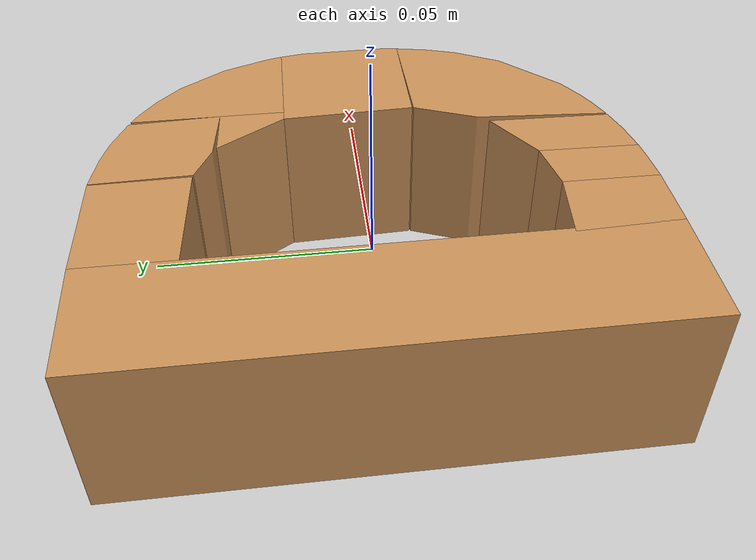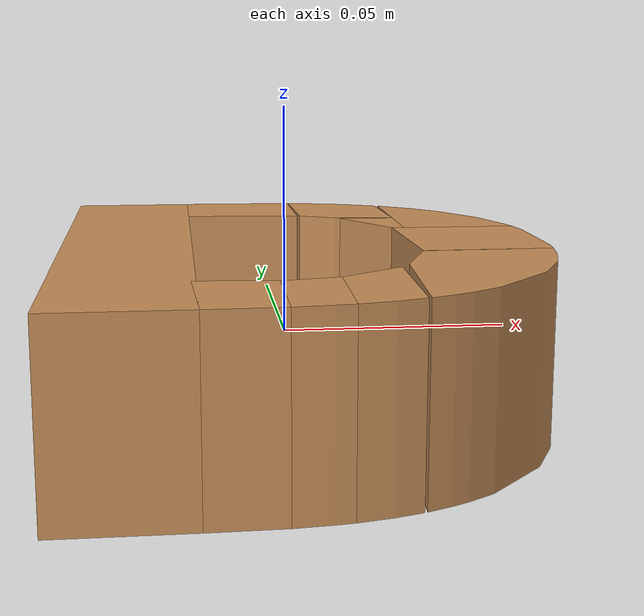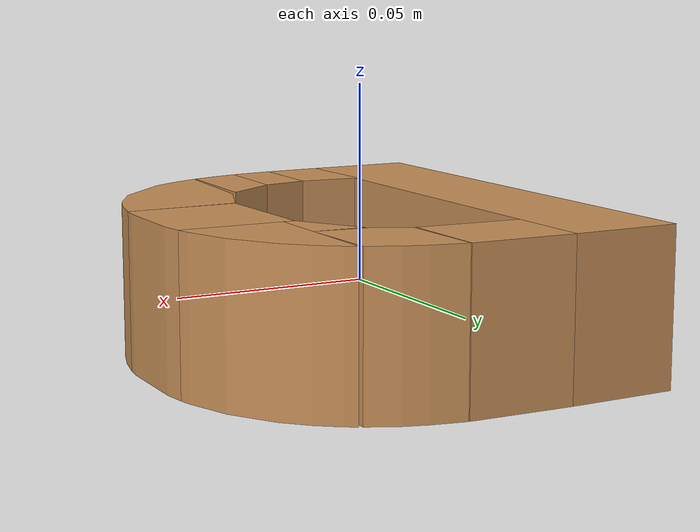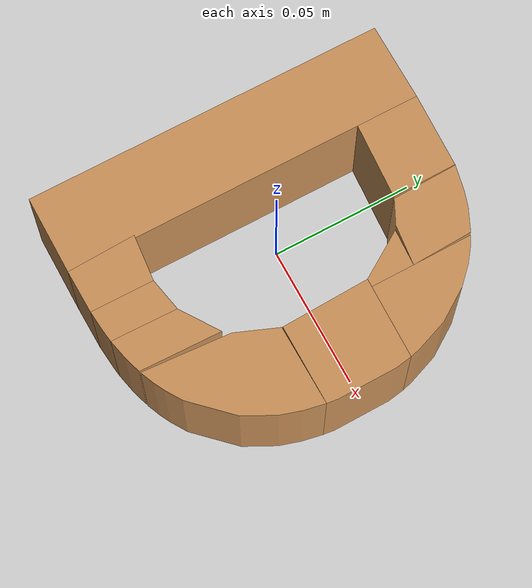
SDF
<?xml version='1.0' encoding='UTF-8'?>
<!-- This SDF was autogenerated by obj_to_drake_sdf.py -->
<sdf version="1.7">
  <model name="smaller_d">
    <link name="smaller_d">
      <inertial>
        <pose>0 0 0 0 0 0</pose>
        <mass>0.2</mass>
        <inertia>
          <ixx>0.00033111648</ixx>
          <iyy>0.00024934697</iyy>
          <izz>0.00052713012</izz>
          <ixy>-1.3354672e-06</ixy>
          <ixz>3.705692e-21</ixz>
          <iyz>-1.3422255e-22</iyz>
        </inertia>
      </inertial>
      <visual name="convex_0">
        <pose>0 0 0 0 0 0</pose>
        <geometry>
          <mesh>
            <uri>smaller_d_convex_0.obj</uri>
          </mesh>
        </geometry>
        <material>
          <diffuse>0.7843137254901961 0.5647058823529412 0.34509803921568627 1</diffuse>
        </material>
      </visual>
      <collision name="convex_0_volume">
        <pose>0 0 0 0 0 0</pose>
        <geometry>
          <mesh>
            <uri>smaller_d_convex_0.obj</uri>
          </mesh>
        </geometry>
        <drake:proximity_properties xmlns:drake="uri:drake">
          <drake:compliant_hydroelastic/>
          <drake:hydroelastic_modulus> 3.0e7 </drake:hydroelastic_modulus>
          <drake:mesh_resolution_hint> 0.02 </drake:mesh_resolution_hint>
          <drake:hunt_crossley_dissipation>10</drake:hunt_crossley_dissipation>
          <drake:mu_dynamic>0.5</drake:mu_dynamic>
        </drake:proximity_properties>
      </collision>
      <visual name="convex_1">
        <pose>0 0 0 0 0 0</pose>
        <geometry>
          <mesh>
            <uri>smaller_d_convex_1.obj</uri>
          </mesh>
        </geometry>
        <material>
          <diffuse>0.7843137254901961 0.5647058823529412 0.34509803921568627 1</diffuse>
        </material>
      </visual>
      <collision name="convex_1_volume">
        <pose>0 0 0 0 0 0</pose>
        <geometry>
          <mesh>
            <uri>smaller_d_convex_1.obj</uri>
          </mesh>
        </geometry>
        <drake:proximity_properties xmlns:drake="uri:drake">
          <drake:compliant_hydroelastic/>
          <drake:hydroelastic_modulus> 3.0e7 </drake:hydroelastic_modulus>
          <drake:mesh_resolution_hint> 0.02 </drake:mesh_resolution_hint>
          <drake:hunt_crossley_dissipation>10</drake:hunt_crossley_dissipation>
          <drake:mu_dynamic>0.5</drake:mu_dynamic>
        </drake:proximity_properties>
      </collision>
      <visual name="convex_2">
        <pose>0 0 0 0 0 0</pose>
        <geometry>
          <mesh>
            <uri>smaller_d_convex_2.obj</uri>
          </mesh>
        </geometry>
        <material>
          <diffuse>0.7843137254901961 0.5647058823529412 0.34509803921568627 1</diffuse>
        </material>
      </visual>
      <collision name="convex_2_volume">
        <pose>0 0 0 0 0 0</pose>
        <geometry>
          <mesh>
            <uri>smaller_d_convex_2.obj</uri>
          </mesh>
        </geometry>
        <drake:proximity_properties xmlns:drake="uri:drake">
          <drake:compliant_hydroelastic/>
          <drake:hydroelastic_modulus> 3.0e7 </drake:hydroelastic_modulus>
          <drake:mesh_resolution_hint> 0.02 </drake:mesh_resolution_hint>
          <drake:hunt_crossley_dissipation>10</drake:hunt_crossley_dissipation>
          <drake:mu_dynamic>0.5</drake:mu_dynamic>
        </drake:proximity_properties>
      </collision>
      <visual name="convex_3">
        <pose>0 0 0 0 0 0</pose>
        <geometry>
          <mesh>
            <uri>smaller_d_convex_3.obj</uri>
          </mesh>
        </geometry>
        <material>
          <diffuse>0.7843137254901961 0.5647058823529412 0.34509803921568627 1</diffuse>
        </material>
      </visual>
      <collision name="convex_3_volume">
        <pose>0 0 0 0 0 0</pose>
        <geometry>
          <mesh>
            <uri>smaller_d_convex_3.obj</uri>
          </mesh>
        </geometry>
        <drake:proximity_properties xmlns:drake="uri:drake">
          <drake:compliant_hydroelastic/>
          <drake:hydroelastic_modulus> 3.0e7 </drake:hydroelastic_modulus>
          <drake:mesh_resolution_hint> 0.02 </drake:mesh_resolution_hint>
          <drake:hunt_crossley_dissipation>10</drake:hunt_crossley_dissipation>
          <drake:mu_dynamic>0.5</drake:mu_dynamic>
        </drake:proximity_properties>
      </collision>
      <visual name="convex_4">
        <pose>0 0 0 0 0 0</pose>
        <geometry>
          <mesh>
            <uri>smaller_d_convex_4.obj</uri>
          </mesh>
        </geometry>
        <material>
          <diffuse>0.7843137254901961 0.5647058823529412 0.34509803921568627 1</diffuse>
        </material>
      </visual>
      <collision name="convex_4_volume">
        <pose>0 0 0 0 0 0</pose>
        <geometry>
          <mesh>
            <uri>smaller_d_convex_4.obj</uri>
          </mesh>
        </geometry>
        <drake:proximity_properties xmlns:drake="uri:drake">
          <drake:compliant_hydroelastic/>
          <drake:hydroelastic_modulus> 3.0e7 </drake:hydroelastic_modulus>
          <drake:mesh_resolution_hint> 0.02 </drake:mesh_resolution_hint>
          <drake:hunt_crossley_dissipation>10</drake:hunt_crossley_dissipation>
          <drake:mu_dynamic>0.5</drake:mu_dynamic>
        </drake:proximity_properties>
      </collision>
      <visual name="convex_5">
        <pose>0 0 0 0 0 0</pose>
        <geometry>
          <mesh>
            <uri>smaller_d_convex_5.obj</uri>
          </mesh>
        </geometry>
        <material>
          <diffuse>0.7843137254901961 0.5647058823529412 0.34509803921568627 1</diffuse>
        </material>
      </visual>
      <collision name="convex_5_volume">
        <pose>0 0 0 0 0 0</pose>
        <geometry>
          <mesh>
            <uri>smaller_d_convex_5.obj</uri>
          </mesh>
        </geometry>
        <drake:proximity_properties xmlns:drake="uri:drake">
          <drake:compliant_hydroelastic/>
          <drake:hydroelastic_modulus> 3.0e7 </drake:hydroelastic_modulus>
          <drake:mesh_resolution_hint> 0.02 </drake:mesh_resolution_hint>
          <drake:hunt_crossley_dissipation>10</drake:hunt_crossley_dissipation>
          <drake:mu_dynamic>0.5</drake:mu_dynamic>
        </drake:proximity_properties>
      </collision>
      <visual name="convex_6">
        <pose>0 0 0 0 0 0</pose>
        <geometry>
          <mesh>
            <uri>smaller_d_convex_6.obj</uri>
          </mesh>
        </geometry>
        <material>
          <diffuse>0.7843137254901961 0.5647058823529412 0.34509803921568627 1</diffuse>
        </material>
      </visual>
      <collision name="convex_6_volume">
        <pose>0 0 0 0 0 0</pose>
        <geometry>
          <mesh>
            <uri>smaller_d_convex_6.obj</uri>
          </mesh>
        </geometry>
        <drake:proximity_properties xmlns:drake="uri:drake">
          <drake:compliant_hydroelastic/>
          <drake:hydroelastic_modulus> 3.0e7 </drake:hydroelastic_modulus>
          <drake:mesh_resolution_hint> 0.02 </drake:mesh_resolution_hint>
          <drake:hunt_crossley_dissipation>10</drake:hunt_crossley_dissipation>
          <drake:mu_dynamic>0.5</drake:mu_dynamic>
        </drake:proximity_properties>
      </collision>
      <visual name="convex_7">
        <pose>0 0 0 0 0 0</pose>
        <geometry>
          <mesh>
            <uri>smaller_d_convex_7.obj</uri>
          </mesh>
        </geometry>
        <material>
          <diffuse>0.7843137254901961 0.5647058823529412 0.34509803921568627 1</diffuse>
        </material>
      </visual>
      <collision name="convex_7_volume">
        <pose>0 0 0 0 0 0</pose>
        <geometry>
          <mesh>
            <uri>smaller_d_convex_7.obj</uri>
          </mesh>
        </geometry>
        <drake:proximity_properties xmlns:drake="uri:drake">
          <drake:compliant_hydroelastic/>
          <drake:hydroelastic_modulus> 3.0e7 </drake:hydroelastic_modulus>
          <drake:mesh_resolution_hint> 0.02 </drake:mesh_resolution_hint>
          <drake:hunt_crossley_dissipation>10</drake:hunt_crossley_dissipation>
          <drake:mu_dynamic>0.5</drake:mu_dynamic>
        </drake:proximity_properties>
      </collision>
      <visual name="convex_8">
        <pose>0 0 0 0 0 0</pose>
        <geometry>
          <mesh>
            <uri>smaller_d_convex_8.obj</uri>
          </mesh>
        </geometry>
        <material>
          <diffuse>0.7843137254901961 0.5647058823529412 0.34509803921568627 1</diffuse>
        </material>
      </visual>
      <collision name="convex_8_volume">
        <pose>0 0 0 0 0 0</pose>
        <geometry>
          <mesh>
            <uri>smaller_d_convex_8.obj</uri>
          </mesh>
        </geometry>
        <drake:proximity_properties xmlns:drake="uri:drake">
          <drake:compliant_hydroelastic/>
          <drake:hydroelastic_modulus> 3.0e7 </drake:hydroelastic_modulus>
          <drake:mesh_resolution_hint> 0.02 </drake:mesh_resolution_hint>
          <drake:hunt_crossley_dissipation>10</drake:hunt_crossley_dissipation>
          <drake:mu_dynamic>0.5</drake:mu_dynamic>
        </drake:proximity_properties>
      </collision>
      <visual name="convex_9">
        <pose>0 0 0 0 0 0</pose>
        <geometry>
          <mesh>
            <uri>smaller_d_convex_9.obj</uri>
          </mesh>
        </geometry>
        <material>
          <diffuse>0.7843137254901961 0.5647058823529412 0.34509803921568627 1</diffuse>
        </material>
      </visual>
      <collision name="convex_9_volume">
        <pose>0 0 0 0 0 0</pose>
        <geometry>
          <mesh>
            <uri>smaller_d_convex_9.obj</uri>
          </mesh>
        </geometry>
        <drake:proximity_properties xmlns:drake="uri:drake">
          <drake:compliant_hydroelastic/>
          <drake:hydroelastic_modulus> 3.0e7 </drake:hydroelastic_modulus>
          <drake:mesh_resolution_hint> 0.02 </drake:mesh_resolution_hint>
          <drake:hunt_crossley_dissipation>10</drake:hunt_crossley_dissipation>
          <drake:mu_dynamic>0.5</drake:mu_dynamic>
        </drake:proximity_properties>
      </collision>
    </link>
  </model>
</sdf>
